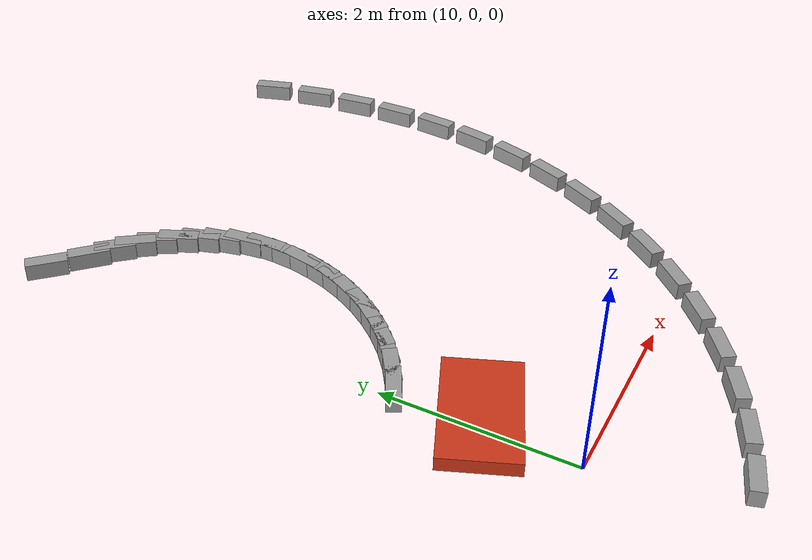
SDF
<sdf version="1.10">
 <world name="s_curve_avoidance">
  <model name="left_curb_seg_0019">
   <static>true</static>
   <pose>10.035907 1.858436 0.090000 0 0 0.487500</pose>
   <link name="curb">
    <collision name="collision">
     <geometry><box><size>0.432000 0.150000 0.180000</size></box></geometry>
    </collision>
    <visual name="visual">
     <geometry><box><size>0.432000 0.150000 0.180000</size></box></geometry>
     <material><ambient>0.58 0.58 0.58 1</ambient><diffuse>0.62 0.62 0.62 1</diffuse></material>
    </visual>
   </link>
  </model>
  <model name="left_curb_seg_0020">
   <static>true</static>
   <pose>10.244126 1.982541 0.090000 0 0 0.587500</pose>
   <link name="curb">
    <collision name="collision">
     <geometry><box><size>0.432000 0.150000 0.180000</size></box></geometry>
    </collision>
    <visual name="visual">
     <geometry><box><size>0.432000 0.150000 0.180000</size></box></geometry>
     <material><ambient>0.58 0.58 0.58 1</ambient><diffuse>0.62 0.62 0.62 1</diffuse></material>
    </visual>
   </link>
  </model>
  <model name="left_curb_seg_0021">
   <static>true</static>
   <pose>10.438914 2.126814 0.090000 0 0 0.687500</pose>
   <link name="curb">
    <collision name="collision">
     <geometry><box><size>0.432000 0.150000 0.180000</size></box></geometry>
    </collision>
    <visual name="visual">
     <geometry><box><size>0.432000 0.150000 0.180000</size></box></geometry>
     <material><ambient>0.58 0.58 0.58 1</ambient><diffuse>0.62 0.62 0.62 1</diffuse></material>
    </visual>
   </link>
  </model>
  <model name="left_curb_seg_0022">
   <static>true</static>
   <pose>10.618326 2.289813 0.090000 0 0 0.787500</pose>
   <link name="curb">
    <collision name="collision">
     <geometry><box><size>0.432000 0.150000 0.180000</size></box></geometry>
    </collision>
    <visual name="visual">
     <geometry><box><size>0.432000 0.150000 0.180000</size></box></geometry>
     <material><ambient>0.58 0.58 0.58 1</ambient><diffuse>0.62 0.62 0.62 1</diffuse></material>
    </visual>
   </link>
  </model>
  <model name="left_curb_seg_0023">
   <static>true</static>
   <pose>10.780569 2.469908 0.090000 0 0 0.887500</pose>
   <link name="curb">
    <collision name="collision">
     <geometry><box><size>0.432000 0.150000 0.180000</size></box></geometry>
    </collision>
    <visual name="visual">
     <geometry><box><size>0.432000 0.150000 0.180000</size></box></geometry>
     <material><ambient>0.58 0.58 0.58 1</ambient><diffuse>0.62 0.62 0.62 1</diffuse></material>
    </visual>
   </link>
  </model>
  <model name="left_curb_seg_0024">
   <static>true</static>
   <pose>10.924021 2.665301 0.090000 0 0 0.987500</pose>
   <link name="curb">
    <collision name="collision">
     <geometry><box><size>0.432000 0.150000 0.180000</size></box></geometry>
    </collision>
    <visual name="visual">
     <geometry><box><size>0.432000 0.150000 0.180000</size></box></geometry>
     <material><ambient>0.58 0.58 0.58 1</ambient><diffuse>0.62 0.62 0.62 1</diffuse></material>
    </visual>
   </link>
  </model>
  <model name="left_curb_seg_0025">
   <static>true</static>
   <pose>11.047251 2.874040 0.090000 0 0 1.087500</pose>
   <link name="curb">
    <collision name="collision">
     <geometry><box><size>0.432000 0.150000 0.180000</size></box></geometry>
    </collision>
    <visual name="visual">
     <geometry><box><size>0.432000 0.150000 0.180000</size></box></geometry>
     <material><ambient>0.58 0.58 0.58 1</ambient><diffuse>0.62 0.62 0.62 1</diffuse></material>
    </visual>
   </link>
  </model>
  <model name="left_curb_seg_0026">
   <static>true</static>
   <pose>11.149026 3.094038 0.090000 0 0 1.187500</pose>
   <link name="curb">
    <collision name="collision">
     <geometry><box><size>0.432000 0.150000 0.180000</size></box></geometry>
    </collision>
    <visual name="visual">
     <geometry><box><size>0.432000 0.150000 0.180000</size></box></geometry>
     <material><ambient>0.58 0.58 0.58 1</ambient><diffuse>0.62 0.62 0.62 1</diffuse></material>
    </visual>
   </link>
  </model>
  <model name="left_curb_seg_0027">
   <static>true</static>
   <pose>11.228329 3.323097 0.090000 0 0 1.287500</pose>
   <link name="curb">
    <collision name="collision">
     <geometry><box><size>0.432000 0.150000 0.180000</size></box></geometry>
    </collision>
    <visual name="visual">
     <geometry><box><size>0.432000 0.150000 0.180000</size></box></geometry>
     <material><ambient>0.58 0.58 0.58 1</ambient><diffuse>0.62 0.62 0.62 1</diffuse></material>
    </visual>
   </link>
  </model>
  <model name="left_curb_seg_0028">
   <static>true</static>
   <pose>11.284368 3.558929 0.090000 0 0 1.387500</pose>
   <link name="curb">
    <collision name="collision">
     <geometry><box><size>0.432000 0.150000 0.180000</size></box></geometry>
    </collision>
    <visual name="visual">
     <geometry><box><size>0.432000 0.150000 0.180000</size></box></geometry>
     <material><ambient>0.58 0.58 0.58 1</ambient><diffuse>0.62 0.62 0.62 1</diffuse></material>
    </visual>
   </link>
  </model>
  <model name="left_curb_seg_0029">
   <static>true</static>
   <pose>11.316583 3.799178 0.090000 0 0 1.487500</pose>
   <link name="curb">
    <collision name="collision">
     <geometry><box><size>0.432000 0.150000 0.180000</size></box></geometry>
    </collision>
    <visual name="visual">
     <geometry><box><size>0.432000 0.150000 0.180000</size></box></geometry>
     <material><ambient>0.58 0.58 0.58 1</ambient><diffuse>0.62 0.62 0.62 1</diffuse></material>
    </visual>
   </link>
  </model>
  <model name="left_curb_seg_0030">
   <static>true</static>
   <pose>11.324653 4.041442 0.090000 0 0 1.587500</pose>
   <link name="curb">
    <collision name="collision">
     <geometry><box><size>0.432000 0.150000 0.180000</size></box></geometry>
    </collision>
    <visual name="visual">
     <geometry><box><size>0.432000 0.150000 0.180000</size></box></geometry>
     <material><ambient>0.58 0.58 0.58 1</ambient><diffuse>0.62 0.62 0.62 1</diffuse></material>
    </visual>
   </link>
  </model>
  <model name="left_curb_seg_0031">
   <static>true</static>
   <pose>11.291093 4.281261 0.090000 0 0 1.687500</pose>
   <link name="curb">
    <collision name="collision">
     <geometry><box><size>0.432000 0.150000 0.180000</size></box></geometry>
    </collision>
    <visual name="visual">
     <geometry><box><size>0.432000 0.150000 0.180000</size></box></geometry>
     <material><ambient>0.58 0.58 0.58 1</ambient><diffuse>0.62 0.62 0.62 1</diffuse></material>
    </visual>
   </link>
  </model>
  <model name="left_curb_seg_0032">
   <static>true</static>
   <pose>11.212097 4.509972 0.090000 0 0 1.787500</pose>
   <link name="curb">
    <collision name="collision">
     <geometry><box><size>0.432000 0.150000 0.180000</size></box></geometry>
    </collision>
    <visual name="visual">
     <geometry><box><size>0.432000 0.150000 0.180000</size></box></geometry>
     <material><ambient>0.58 0.58 0.58 1</ambient><diffuse>0.62 0.62 0.62 1</diffuse></material>
    </visual>
   </link>
  </model>
  <model name="left_curb_seg_0033">
   <static>true</static>
   <pose>11.111717 4.725797 0.090000 0 0 1.887500</pose>
   <link name="curb">
    <collision name="collision">
     <geometry><box><size>0.432000 0.150000 0.180000</size></box></geometry>
    </collision>
    <visual name="visual">
     <geometry><box><size>0.432000 0.150000 0.180000</size></box></geometry>
     <material><ambient>0.58 0.58 0.58 1</ambient><diffuse>0.62 0.62 0.62 1</diffuse></material>
    </visual>
   </link>
  </model>
  <model name="left_curb_seg_0034">
   <static>true</static>
   <pose>10.991725 4.926790 0.090000 0 0 1.987500</pose>
   <link name="curb">
    <collision name="collision">
     <geometry><box><size>0.432000 0.150000 0.180000</size></box></geometry>
    </collision>
    <visual name="visual">
     <geometry><box><size>0.432000 0.150000 0.180000</size></box></geometry>
     <material><ambient>0.58 0.58 0.58 1</ambient><diffuse>0.62 0.62 0.62 1</diffuse></material>
    </visual>
   </link>
  </model>
  <model name="left_curb_seg_0035">
   <static>true</static>
   <pose>10.854066 5.111228 0.090000 0 0 2.087500</pose>
   <link name="curb">
    <collision name="collision">
     <geometry><box><size>0.432000 0.150000 0.180000</size></box></geometry>
    </collision>
    <visual name="visual">
     <geometry><box><size>0.432000 0.150000 0.180000</size></box></geometry>
     <material><ambient>0.58 0.58 0.58 1</ambient><diffuse>0.62 0.62 0.62 1</diffuse></material>
    </visual>
   </link>
  </model>
  <model name="left_curb_seg_0036">
   <static>true</static>
   <pose>10.700828 5.277629 0.090000 0 0 2.187500</pose>
   <link name="curb">
    <collision name="collision">
     <geometry><box><size>0.432000 0.150000 0.180000</size></box></geometry>
    </collision>
    <visual name="visual">
     <geometry><box><size>0.432000 0.150000 0.180000</size></box></geometry>
     <material><ambient>0.58 0.58 0.58 1</ambient><diffuse>0.62 0.62 0.62 1</diffuse></material>
    </visual>
   </link>
  </model>
  <model name="left_curb_seg_0037">
   <static>true</static>
   <pose>10.534216 5.424759 0.090000 0 0 2.287500</pose>
   <link name="curb">
    <collision name="collision">
     <geometry><box><size>0.432000 0.150000 0.180000</size></box></geometry>
    </collision>
    <visual name="visual">
     <geometry><box><size>0.432000 0.150000 0.180000</size></box></geometry>
     <material><ambient>0.58 0.58 0.58 1</ambient><diffuse>0.62 0.62 0.62 1</diffuse></material>
    </visual>
   </link>
  </model>
  <model name="left_curb_seg_0038">
   <static>true</static>
   <pose>10.316117 5.594848 0.090000 0 0 2.355928</pose>
   <link name="curb">
    <collision name="collision">
     <geometry><box><size>0.432000 0.150000 0.180000</size></box></geometry>
    </collision>
    <visual name="visual">
     <geometry><box><size>0.432000 0.150000 0.180000</size></box></geometry>
     <material><ambient>0.58 0.58 0.58 1</ambient><diffuse>0.62 0.62 0.62 1</diffuse></material>
    </visual>
   </link>
  </model>
  <model name="left_curb_seg_0039">
   <static>true</static>
   <pose>9.977306 5.881899 0.090000 0 0 2.333672</pose>
   <link name="curb">
    <collision name="collision">
     <geometry><box><size>0.432000 0.150000 0.180000</size></box></geometry>
    </collision>
    <visual name="visual">
     <geometry><box><size>0.432000 0.150000 0.180000</size></box></geometry>
     <material><ambient>0.58 0.58 0.58 1</ambient><diffuse>0.62 0.62 0.62 1</diffuse></material>
    </visual>
   </link>
  </model>
  <model name="right_curb_seg_0017">
   <static>true</static>
   <pose>10.480816 -1.345239 0.090000 0 0 0.287500</pose>
   <link name="curb">
    <collision name="collision">
     <geometry><box><size>0.432000 0.150000 0.180000</size></box></geometry>
    </collision>
    <visual name="visual">
     <geometry><box><size>0.432000 0.150000 0.180000</size></box></geometry>
     <material><ambient>0.58 0.58 0.58 1</ambient><diffuse>0.62 0.62 0.62 1</diffuse></material>
    </visual>
   </link>
  </model>
  <model name="right_curb_seg_0018">
   <static>true</static>
   <pose>11.006645 -1.160711 0.090000 0 0 0.387500</pose>
   <link name="curb">
    <collision name="collision">
     <geometry><box><size>0.432000 0.150000 0.180000</size></box></geometry>
    </collision>
    <visual name="visual">
     <geometry><box><size>0.432000 0.150000 0.180000</size></box></geometry>
     <material><ambient>0.58 0.58 0.58 1</ambient><diffuse>0.62 0.62 0.62 1</diffuse></material>
    </visual>
   </link>
  </model>
  <model name="right_curb_seg_0019">
   <static>true</static>
   <pose>11.511426 -0.924610 0.090000 0 0 0.487500</pose>
   <link name="curb">
    <collision name="collision">
     <geometry><box><size>0.432000 0.150000 0.180000</size></box></geometry>
    </collision>
    <visual name="visual">
     <geometry><box><size>0.432000 0.150000 0.180000</size></box></geometry>
     <material><ambient>0.58 0.58 0.58 1</ambient><diffuse>0.62 0.62 0.62 1</diffuse></material>
    </visual>
   </link>
  </model>
  <model name="right_curb_seg_0020">
   <static>true</static>
   <pose>11.990114 -0.639295 0.090000 0 0 0.587500</pose>
   <link name="curb">
    <collision name="collision">
     <geometry><box><size>0.432000 0.150000 0.180000</size></box></geometry>
    </collision>
    <visual name="visual">
     <geometry><box><size>0.432000 0.150000 0.180000</size></box></geometry>
     <material><ambient>0.58 0.58 0.58 1</ambient><diffuse>0.62 0.62 0.62 1</diffuse></material>
    </visual>
   </link>
  </model>
  <model name="right_curb_seg_0021">
   <static>true</static>
   <pose>12.437926 -0.307616 0.090000 0 0 0.687500</pose>
   <link name="curb">
    <collision name="collision">
     <geometry><box><size>0.432000 0.150000 0.180000</size></box></geometry>
    </collision>
    <visual name="visual">
     <geometry><box><size>0.432000 0.150000 0.180000</size></box></geometry>
     <material><ambient>0.58 0.58 0.58 1</ambient><diffuse>0.62 0.62 0.62 1</diffuse></material>
    </visual>
   </link>
  </model>
  <model name="right_curb_seg_0022">
   <static>true</static>
   <pose>12.850389 0.067113 0.090000 0 0 0.787500</pose>
   <link name="curb">
    <collision name="collision">
     <geometry><box><size>0.432000 0.150000 0.180000</size></box></geometry>
    </collision>
    <visual name="visual">
     <geometry><box><size>0.432000 0.150000 0.180000</size></box></geometry>
     <material><ambient>0.58 0.58 0.58 1</ambient><diffuse>0.62 0.62 0.62 1</diffuse></material>
    </visual>
   </link>
  </model>
  <model name="right_curb_seg_0023">
   <static>true</static>
   <pose>13.223380 0.481147 0.090000 0 0 0.887500</pose>
   <link name="curb">
    <collision name="collision">
     <geometry><box><size>0.432000 0.150000 0.180000</size></box></geometry>
    </collision>
    <visual name="visual">
     <geometry><box><size>0.432000 0.150000 0.180000</size></box></geometry>
     <material><ambient>0.58 0.58 0.58 1</ambient><diffuse>0.62 0.62 0.62 1</diffuse></material>
    </visual>
   </link>
  </model>
  <model name="right_curb_seg_0024">
   <static>true</static>
   <pose>13.553174 0.930350 0.090000 0 0 0.987500</pose>
   <link name="curb">
    <collision name="collision">
     <geometry><box><size>0.432000 0.150000 0.180000</size></box></geometry>
    </collision>
    <visual name="visual">
     <geometry><box><size>0.432000 0.150000 0.180000</size></box></geometry>
     <material><ambient>0.58 0.58 0.58 1</ambient><diffuse>0.62 0.62 0.62 1</diffuse></material>
    </visual>
   </link>
  </model>
  <model name="right_curb_seg_0025">
   <static>true</static>
   <pose>13.836475 1.410233 0.090000 0 0 1.087500</pose>
   <link name="curb">
    <collision name="collision">
     <geometry><box><size>0.432000 0.150000 0.180000</size></box></geometry>
    </collision>
    <visual name="visual">
     <geometry><box><size>0.432000 0.150000 0.180000</size></box></geometry>
     <material><ambient>0.58 0.58 0.58 1</ambient><diffuse>0.62 0.62 0.62 1</diffuse></material>
    </visual>
   </link>
  </model>
  <model name="right_curb_seg_0026">
   <static>true</static>
   <pose>14.070452 1.916002 0.090000 0 0 1.187500</pose>
   <link name="curb">
    <collision name="collision">
     <geometry><box><size>0.432000 0.150000 0.180000</size></box></geometry>
    </collision>
    <visual name="visual">
     <geometry><box><size>0.432000 0.150000 0.180000</size></box></geometry>
     <material><ambient>0.58 0.58 0.58 1</ambient><diffuse>0.62 0.62 0.62 1</diffuse></material>
    </visual>
   </link>
  </model>
  <model name="right_curb_seg_0027">
   <static>true</static>
   <pose>14.252767 2.442602 0.090000 0 0 1.287500</pose>
   <link name="curb">
    <collision name="collision">
     <geometry><box><size>0.432000 0.150000 0.180000</size></box></geometry>
    </collision>
    <visual name="visual">
     <geometry><box><size>0.432000 0.150000 0.180000</size></box></geometry>
     <material><ambient>0.58 0.58 0.58 1</ambient><diffuse>0.62 0.62 0.62 1</diffuse></material>
    </visual>
   </link>
  </model>
  <model name="right_curb_seg_0028">
   <static>true</static>
   <pose>14.381600 2.984773 0.090000 0 0 1.387500</pose>
   <link name="curb">
    <collision name="collision">
     <geometry><box><size>0.432000 0.150000 0.180000</size></box></geometry>
    </collision>
    <visual name="visual">
     <geometry><box><size>0.432000 0.150000 0.180000</size></box></geometry>
     <material><ambient>0.58 0.58 0.58 1</ambient><diffuse>0.62 0.62 0.62 1</diffuse></material>
    </visual>
   </link>
  </model>
  <model name="right_curb_seg_0029">
   <static>true</static>
   <pose>14.455662 3.537097 0.090000 0 0 1.487500</pose>
   <link name="curb">
    <collision name="collision">
     <geometry><box><size>0.432000 0.150000 0.180000</size></box></geometry>
    </collision>
    <visual name="visual">
     <geometry><box><size>0.432000 0.150000 0.180000</size></box></geometry>
     <material><ambient>0.58 0.58 0.58 1</ambient><diffuse>0.62 0.62 0.62 1</diffuse></material>
    </visual>
   </link>
  </model>
  <model name="right_curb_seg_0030">
   <static>true</static>
   <pose>14.474213 4.094056 0.090000 0 0 1.587500</pose>
   <link name="curb">
    <collision name="collision">
     <geometry><box><size>0.432000 0.150000 0.180000</size></box></geometry>
    </collision>
    <visual name="visual">
     <geometry><box><size>0.432000 0.150000 0.180000</size></box></geometry>
     <material><ambient>0.58 0.58 0.58 1</ambient><diffuse>0.62 0.62 0.62 1</diffuse></material>
    </visual>
   </link>
  </model>
  <model name="right_curb_seg_0031">
   <static>true</static>
   <pose>14.454472 4.652125 0.090000 0 0 1.687500</pose>
   <link name="curb">
    <collision name="collision">
     <geometry><box><size>0.432000 0.150000 0.180000</size></box></geometry>
    </collision>
    <visual name="visual">
     <geometry><box><size>0.432000 0.150000 0.180000</size></box></geometry>
     <material><ambient>0.58 0.58 0.58 1</ambient><diffuse>0.62 0.62 0.62 1</diffuse></material>
    </visual>
   </link>
  </model>
  <model name="right_curb_seg_0032">
   <static>true</static>
   <pose>14.400777 5.211994 0.090000 0 0 1.787500</pose>
   <link name="curb">
    <collision name="collision">
     <geometry><box><size>0.432000 0.150000 0.180000</size></box></geometry>
    </collision>
    <visual name="visual">
     <geometry><box><size>0.432000 0.150000 0.180000</size></box></geometry>
     <material><ambient>0.58 0.58 0.58 1</ambient><diffuse>0.62 0.62 0.62 1</diffuse></material>
    </visual>
   </link>
  </model>
  <model name="right_curb_seg_0033">
   <static>true</static>
   <pose>14.290403 5.767564 0.090000 0 0 1.887500</pose>
   <link name="curb">
    <collision name="collision">
     <geometry><box><size>0.432000 0.150000 0.180000</size></box></geometry>
    </collision>
    <visual name="visual">
     <geometry><box><size>0.432000 0.150000 0.180000</size></box></geometry>
     <material><ambient>0.58 0.58 0.58 1</ambient><diffuse>0.62 0.62 0.62 1</diffuse></material>
    </visual>
   </link>
  </model>
  <model name="obstacle_1">
   <static>true</static>
   <pose>10.125837 1.023406 0.075 0 0 0.390551</pose>
   <link name="box_link">
    <collision name="collision"><geometry><box><size>1.30 0.78 0.15</size></box></geometry></collision>
    <visual name="visual">
     <geometry><box><size>1.30 0.78 0.15</size></box></geometry>
     <material><ambient>0.82 0.22 0.10 1</ambient><diffuse>0.82 0.22 0.10 1</diffuse></material>
    </visual>
   </link>
  </model>
 </world>
</sdf>
